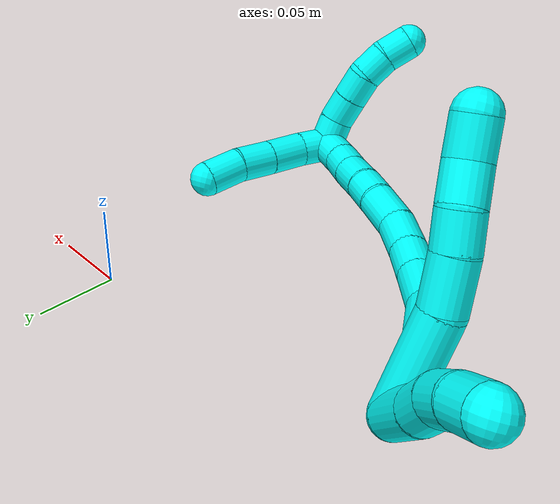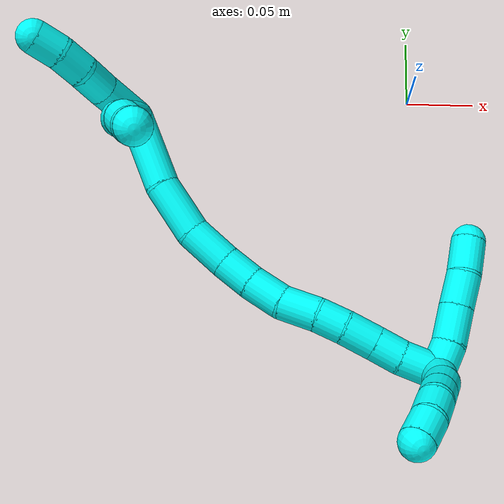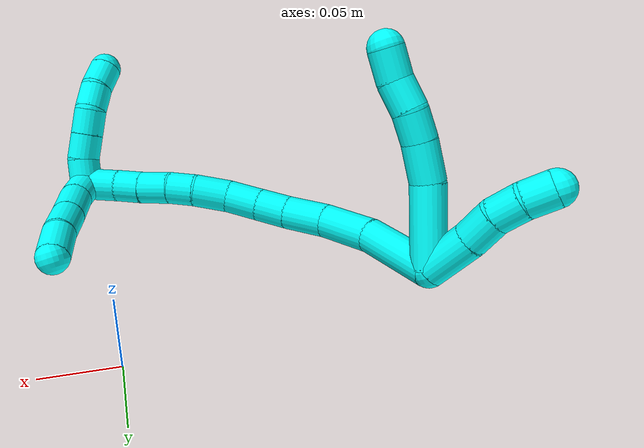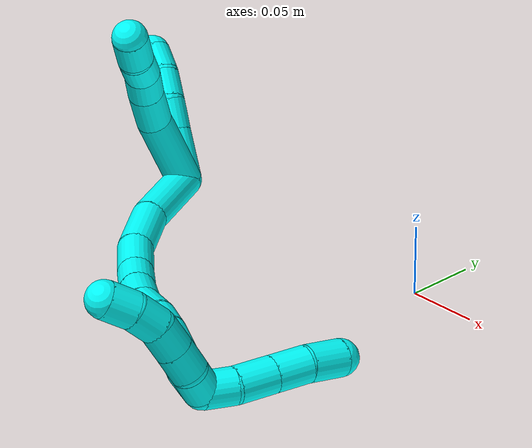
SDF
<sdf version="1.7">
 <world name="default">
  <model name="3">
   <static>0</static>
   <link name="3">
    <collision name="collision-cylinder-e_1_2_8">
     <pose>-0.007163 0.004834 0.027624 -0.173247 -0.250083 0.02183</pose>
     <geometry><cylinder><radius>0.0125</radius><length>0.057889</length></cylinder></geometry>
     <surface>
      <friction><ode><mu>1.16</mu><mu2>1.16</mu2><slip1>0</slip1><slip2>0</slip2></ode></friction>
      <contact><ode><kp>1e+06</kp><kd>1</kd><max_vel>0</max_vel><min_depth>0.001</min_depth></ode></contact>
     </surface>
    </collision>
    <visual name="visual-cylinder-e_1_2_8">
     <pose>-0.007163 0.004834 0.027624 -0.173247 -0.250083 0.02183</pose>
     <geometry><cylinder><radius>0.0125</radius><length>0.057889</length></cylinder></geometry>
     <material><ambient>0.003922 1 0.996078 1</ambient></material>
    </visual>
    <collision name="collision-cylinder-e_2_8_9">
     <pose>-0.014741 0.012214 0.069042 -0.182497 -0.029547 0.002704</pose>
     <geometry><cylinder><radius>0.0125</radius><length>0.028065</length></cylinder></geometry>
     <surface>
      <friction><ode><mu>1.16</mu><mu2>1.16</mu2><slip1>0</slip1><slip2>0</slip2></ode></friction>
      <contact><ode><kp>1e+06</kp><kd>1</kd><max_vel>0</max_vel><min_depth>0.001</min_depth></ode></contact>
     </surface>
    </collision>
    <visual name="visual-cylinder-e_2_8_9">
     <pose>-0.014741 0.012214 0.069042 -0.182497 -0.029547 0.002704</pose>
     <geometry><cylinder><radius>0.0125</radius><length>0.028065</length></cylinder></geometry>
     <material><ambient>0.003922 1 0.996078 1</ambient></material>
    </visual>
    <collision name="collision-cylinder-e_3_9_10">
     <pose>-0.014358 0.01657 0.092992 -0.1764 0.077198 -0.00683</pose>
     <geometry><cylinder><radius>0.0125</radius><length>0.020694</length></cylinder></geometry>
     <surface>
      <friction><ode><mu>1.16</mu><mu2>1.16</mu2><slip1>0</slip1><slip2>0</slip2></ode></friction>
      <contact><ode><kp>1e+06</kp><kd>1</kd><max_vel>0</max_vel><min_depth>0.001</min_depth></ode></contact>
     </surface>
    </collision>
    <visual name="visual-cylinder-e_3_9_10">
     <pose>-0.014358 0.01657 0.092992 -0.1764 0.077198 -0.00683</pose>
     <geometry><cylinder><radius>0.0125</radius><length>0.020694</length></cylinder></geometry>
     <material><ambient>0.003922 1 0.996078 1</ambient></material>
    </visual>
    <collision name="collision-cylinder-e_4_10_11">
     <pose>-0.012026 0.017905 0.113798 0.044617 0.142863 0.003193</pose>
     <geometry><cylinder><radius>0.0125</radius><length>0.021541</length></cylinder></geometry>
     <surface>
      <friction><ode><mu>1.16</mu><mu2>1.16</mu2><slip1>0</slip1><slip2>0</slip2></ode></friction>
      <contact><ode><kp>1e+06</kp><kd>1</kd><max_vel>0</max_vel><min_depth>0.001</min_depth></ode></contact>
     </surface>
    </collision>
    <visual name="visual-cylinder-e_4_10_11">
     <pose>-0.012026 0.017905 0.113798 0.044617 0.142863 0.003193</pose>
     <geometry><cylinder><radius>0.0125</radius><length>0.021541</length></cylinder></geometry>
     <material><ambient>0.003922 1 0.996078 1</ambient></material>
    </visual>
    <collision name="collision-cylinder-e_5_11_6">
     <pose>-0.010155 0.0191 0.135219 -0.153866 0.031028 -0.002392</pose>
     <geometry><cylinder><radius>0.0125</radius><length>0.021811</length></cylinder></geometry>
     <surface>
      <friction><ode><mu>1.16</mu><mu2>1.16</mu2><slip1>0</slip1><slip2>0</slip2></ode></friction>
      <contact><ode><kp>1e+06</kp><kd>1</kd><max_vel>0</max_vel><min_depth>0.001</min_depth></ode></contact>
     </surface>
    </collision>
    <visual name="visual-cylinder-e_5_11_6">
     <pose>-0.010155 0.0191 0.135219 -0.153866 0.031028 -0.002392</pose>
     <geometry><cylinder><radius>0.0125</radius><length>0.021811</length></cylinder></geometry>
     <material><ambient>0.003922 1 0.996078 1</ambient></material>
    </visual>
    <collision name="collision-cylinder-e_1_2_12">
     <pose>-0.011357 0.012144 0.006271 -1.09413 -0.693347 0.433171</pose>
     <geometry><cylinder><radius>0.0125</radius><length>0.03554</length></cylinder></geometry>
     <surface>
      <friction><ode><mu>1.16</mu><mu2>1.16</mu2><slip1>0</slip1><slip2>0</slip2></ode></friction>
      <contact><ode><kp>1e+06</kp><kd>1</kd><max_vel>0</max_vel><min_depth>0.001</min_depth></ode></contact>
     </surface>
    </collision>
    <visual name="visual-cylinder-e_1_2_12">
     <pose>-0.011357 0.012144 0.006271 -1.09413 -0.693347 0.433171</pose>
     <geometry><cylinder><radius>0.0125</radius><length>0.03554</length></cylinder></geometry>
     <material><ambient>0.003922 1 0.996078 1</ambient></material>
    </visual>
    <collision name="collision-cylinder-e_2_12_13">
     <pose>-0.029306 0.032047 0.017787 -0.976381 -0.61329 0.333188</pose>
     <geometry><cylinder><radius>0.0125</radius><length>0.022906</length></cylinder></geometry>
     <surface>
      <friction><ode><mu>1.16</mu><mu2>1.16</mu2><slip1>0</slip1><slip2>0</slip2></ode></friction>
      <contact><ode><kp>1e+06</kp><kd>1</kd><max_vel>0</max_vel><min_depth>0.001</min_depth></ode></contact>
     </surface>
    </collision>
    <visual name="visual-cylinder-e_2_12_13">
     <pose>-0.029306 0.032047 0.017787 -0.976381 -0.61329 0.333188</pose>
     <geometry><cylinder><radius>0.0125</radius><length>0.022906</length></cylinder></geometry>
     <material><ambient>0.003922 1 0.996078 1</ambient></material>
    </visual>
    <collision name="collision-cylinder-e_3_13_14">
     <pose>-0.043006 0.047159 0.025368 -1.2631 -0.744446 0.556368</pose>
     <geometry><cylinder><radius>0.0125</radius><length>0.02098</length></cylinder></geometry>
     <surface>
      <friction><ode><mu>1.16</mu><mu2>1.16</mu2><slip1>0</slip1><slip2>0</slip2></ode></friction>
      <contact><ode><kp>1e+06</kp><kd>1</kd><max_vel>0</max_vel><min_depth>0.001</min_depth></ode></contact>
     </surface>
    </collision>
    <visual name="visual-cylinder-e_3_13_14">
     <pose>-0.043006 0.047159 0.025368 -1.2631 -0.744446 0.556368</pose>
     <geometry><cylinder><radius>0.0125</radius><length>0.02098</length></cylinder></geometry>
     <material><ambient>0.003922 1 0.996078 1</ambient></material>
    </visual>
    <collision name="collision-cylinder-e_4_14_5">
     <pose>-0.058278 0.060708 0.02858 -1.43046 -0.916855 0.809961</pose>
     <geometry><cylinder><radius>0.0125</radius><length>0.020574</length></cylinder></geometry>
     <surface>
      <friction><ode><mu>1.16</mu><mu2>1.16</mu2><slip1>0</slip1><slip2>0</slip2></ode></friction>
      <contact><ode><kp>1e+06</kp><kd>1</kd><max_vel>0</max_vel><min_depth>0.001</min_depth></ode></contact>
     </surface>
    </collision>
    <visual name="visual-cylinder-e_4_14_5">
     <pose>-0.058278 0.060708 0.02858 -1.43046 -0.916855 0.809961</pose>
     <geometry><cylinder><radius>0.0125</radius><length>0.020574</length></cylinder></geometry>
     <material><ambient>0.003922 1 0.996078 1</ambient></material>
    </visual>
    <collision name="collision-cylinder-e_1_2_15">
     <pose>0.006604 -0.023583 0.01486 1.00853 0.232629 0.128781</pose>
     <geometry><cylinder><radius>0.0125</radius><length>0.057291</length></cylinder></geometry>
     <surface>
      <friction><ode><mu>1.16</mu><mu2>1.16</mu2><slip1>0</slip1><slip2>0</slip2></ode></friction>
      <contact><ode><kp>1e+06</kp><kd>1</kd><max_vel>0</max_vel><min_depth>0.001</min_depth></ode></contact>
     </surface>
    </collision>
    <visual name="visual-cylinder-e_1_2_15">
     <pose>0.006604 -0.023583 0.01486 1.00853 0.232629 0.128781</pose>
     <geometry><cylinder><radius>0.0125</radius><length>0.057291</length></cylinder></geometry>
     <material><ambient>0.003922 1 0.996078 1</ambient></material>
    </visual>
    <collision name="collision-cylinder-e_2_15_16">
     <pose>0.022086 -0.063009 0.039051 1.03849 0.449818 0.260047</pose>
     <geometry><cylinder><radius>0.0125</radius><length>0.040838</length></cylinder></geometry>
     <surface>
      <friction><ode><mu>1.16</mu><mu2>1.16</mu2><slip1>0</slip1><slip2>0</slip2></ode></friction>
      <contact><ode><kp>1e+06</kp><kd>1</kd><max_vel>0</max_vel><min_depth>0.001</min_depth></ode></contact>
     </surface>
    </collision>
    <visual name="visual-cylinder-e_2_15_16">
     <pose>0.022086 -0.063009 0.039051 1.03849 0.449818 0.260047</pose>
     <geometry><cylinder><radius>0.0125</radius><length>0.040838</length></cylinder></geometry>
     <material><ambient>0.003922 1 0.996078 1</ambient></material>
    </visual>
    <collision name="collision-cylinder-e_3_16_17">
     <pose>0.041231 -0.088934 0.05565 0.946276 0.690494 0.364147</pose>
     <geometry><cylinder><radius>0.0125</radius><length>0.032239</length></cylinder></geometry>
     <surface>
      <friction><ode><mu>1.16</mu><mu2>1.16</mu2><slip1>0</slip1><slip2>0</slip2></ode></friction>
      <contact><ode><kp>1e+06</kp><kd>1</kd><max_vel>0</max_vel><min_depth>0.001</min_depth></ode></contact>
     </surface>
    </collision>
    <visual name="visual-cylinder-e_3_16_17">
     <pose>0.041231 -0.088934 0.05565 0.946276 0.690494 0.364147</pose>
     <geometry><cylinder><radius>0.0125</radius><length>0.032239</length></cylinder></geometry>
     <material><ambient>0.003922 1 0.996078 1</ambient></material>
    </visual>
    <collision name="collision-cylinder-e_4_17_18">
     <pose>0.059542 -0.105734 0.069109 0.826095 0.72187 0.32789</pose>
     <geometry><cylinder><radius>0.0125</radius><length>0.024349</length></cylinder></geometry>
     <surface>
      <friction><ode><mu>1.16</mu><mu2>1.16</mu2><slip1>0</slip1><slip2>0</slip2></ode></friction>
      <contact><ode><kp>1e+06</kp><kd>1</kd><max_vel>0</max_vel><min_depth>0.001</min_depth></ode></contact>
     </surface>
    </collision>
    <visual name="visual-cylinder-e_4_17_18">
     <pose>0.059542 -0.105734 0.069109 0.826095 0.72187 0.32789</pose>
     <geometry><cylinder><radius>0.0125</radius><length>0.024349</length></cylinder></geometry>
     <material><ambient>0.003922 1 0.996078 1</ambient></material>
    </visual>
    <collision name="collision-cylinder-e_5_18_19">
     <pose>0.076967 -0.118582 0.082302 0.719125 0.789504 0.310695</pose>
     <geometry><cylinder><radius>0.0125</radius><length>0.026423</length></cylinder></geometry>
     <surface>
      <friction><ode><mu>1.16</mu><mu2>1.16</mu2><slip1>0</slip1><slip2>0</slip2></ode></friction>
      <contact><ode><kp>1e+06</kp><kd>1</kd><max_vel>0</max_vel><min_depth>0.001</min_depth></ode></contact>
     </surface>
    </collision>
    <visual name="visual-cylinder-e_5_18_19">
     <pose>0.076967 -0.118582 0.082302 0.719125 0.789504 0.310695</pose>
     <geometry><cylinder><radius>0.0125</radius><length>0.026423</length></cylinder></geometry>
     <material><ambient>0.003922 1 0.996078 1</ambient></material>
    </visual>
    <collision name="collision-cylinder-e_6_19_20">
     <pose>0.097767 -0.128458 0.09569 0.53059 0.995451 0.29314</pose>
     <geometry><cylinder><radius>0.0125</radius><length>0.027223</length></cylinder></geometry>
     <surface>
      <friction><ode><mu>1.16</mu><mu2>1.16</mu2><slip1>0</slip1><slip2>0</slip2></ode></friction>
      <contact><ode><kp>1e+06</kp><kd>1</kd><max_vel>0</max_vel><min_depth>0.001</min_depth></ode></contact>
     </surface>
    </collision>
    <visual name="visual-cylinder-e_6_19_20">
     <pose>0.097767 -0.128458 0.09569 0.53059 0.995451 0.29314</pose>
     <geometry><cylinder><radius>0.0125</radius><length>0.027223</length></cylinder></geometry>
     <material><ambient>0.003922 1 0.996078 1</ambient></material>
    </visual>
    <collision name="collision-cylinder-e_7_20_21">
     <pose>0.117591 -0.13633 0.106117 0.795875 0.968916 0.435453</pose>
     <geometry><cylinder><radius>0.0125</radius><length>0.02039</length></cylinder></geometry>
     <surface>
      <friction><ode><mu>1.16</mu><mu2>1.16</mu2><slip1>0</slip1><slip2>0</slip2></ode></friction>
      <contact><ode><kp>1e+06</kp><kd>1</kd><max_vel>0</max_vel><min_depth>0.001</min_depth></ode></contact>
     </surface>
    </collision>
    <visual name="visual-cylinder-e_7_20_21">
     <pose>0.117591 -0.13633 0.106117 0.795875 0.968916 0.435453</pose>
     <geometry><cylinder><radius>0.0125</radius><length>0.02039</length></cylinder></geometry>
     <material><ambient>0.003922 1 0.996078 1</ambient></material>
    </visual>
    <collision name="collision-cylinder-e_8_21_22">
     <pose>0.135663 -0.146201 0.113844 1.0001 0.955836 0.551577</pose>
     <geometry><cylinder><radius>0.0125</radius><length>0.023673</length></cylinder></geometry>
     <surface>
      <friction><ode><mu>1.16</mu><mu2>1.16</mu2><slip1>0</slip1><slip2>0</slip2></ode></friction>
      <contact><ode><kp>1e+06</kp><kd>1</kd><max_vel>0</max_vel><min_depth>0.001</min_depth></ode></contact>
     </surface>
    </collision>
    <visual name="visual-cylinder-e_8_21_22">
     <pose>0.135663 -0.146201 0.113844 1.0001 0.955836 0.551577</pose>
     <geometry><cylinder><radius>0.0125</radius><length>0.023673</length></cylinder></geometry>
     <material><ambient>0.003922 1 0.996078 1</ambient></material>
    </visual>
    <collision name="collision-cylinder-e_9_22_23">
     <pose>0.153625 -0.156896 0.121413 0.905908 0.922149 0.47447</pose>
     <geometry><cylinder><radius>0.0125</radius><length>0.020817</length></cylinder></geometry>
     <surface>
      <friction><ode><mu>1.16</mu><mu2>1.16</mu2><slip1>0</slip1><slip2>0</slip2></ode></friction>
      <contact><ode><kp>1e+06</kp><kd>1</kd><max_vel>0</max_vel><min_depth>0.001</min_depth></ode></contact>
     </surface>
    </collision>
    <visual name="visual-cylinder-e_9_22_23">
     <pose>0.153625 -0.156896 0.121413 0.905908 0.922149 0.47447</pose>
     <geometry><cylinder><radius>0.0125</radius><length>0.020817</length></cylinder></geometry>
     <material><ambient>0.003922 1 0.996078 1</ambient></material>
    </visual>
    <collision name="collision-cylinder-e_10_23_1">
     <pose>0.173396 -0.166757 0.130105 0.795717 1.03094 0.467513</pose>
     <geometry><cylinder><radius>0.0125</radius><length>0.026758</length></cylinder></geometry>
     <surface>
      <friction><ode><mu>1.16</mu><mu2>1.16</mu2><slip1>0</slip1><slip2>0</slip2></ode></friction>
      <contact><ode><kp>1e+06</kp><kd>1</kd><max_vel>0</max_vel><min_depth>0.001</min_depth></ode></contact>
     </surface>
    </collision>
    <visual name="visual-cylinder-e_10_23_1">
     <pose>0.173396 -0.166757 0.130105 0.795717 1.03094 0.467513</pose>
     <geometry><cylinder><radius>0.0125</radius><length>0.026758</length></cylinder></geometry>
     <material><ambient>0.003922 1 0.996078 1</ambient></material>
    </visual>
    <collision name="collision-cylinder-e_1_1_24">
     <pose>0.190764 -0.164055 0.130168 -2.12849 0.580967 -0.98838</pose>
     <geometry><cylinder><radius>0.0125</radius><length>0.02147</length></cylinder></geometry>
     <surface>
      <friction><ode><mu>1.16</mu><mu2>1.16</mu2><slip1>0</slip1><slip2>0</slip2></ode></friction>
      <contact><ode><kp>1e+06</kp><kd>1</kd><max_vel>0</max_vel><min_depth>0.001</min_depth></ode></contact>
     </surface>
    </collision>
    <visual name="visual-cylinder-e_1_1_24">
     <pose>0.190764 -0.164055 0.130168 -2.12849 0.580967 -0.98838</pose>
     <geometry><cylinder><radius>0.0125</radius><length>0.02147</length></cylinder></geometry>
     <material><ambient>0.003922 1 0.996078 1</ambient></material>
    </visual>
    <collision name="collision-cylinder-e_2_24_25">
     <pose>0.201795 -0.145687 0.119036 -2.10641 0.389951 -0.667729</pose>
     <geometry><cylinder><radius>0.0125</radius><length>0.027041</length></cylinder></geometry>
     <surface>
      <friction><ode><mu>1.16</mu><mu2>1.16</mu2><slip1>0</slip1><slip2>0</slip2></ode></friction>
      <contact><ode><kp>1e+06</kp><kd>1</kd><max_vel>0</max_vel><min_depth>0.001</min_depth></ode></contact>
     </surface>
    </collision>
    <visual name="visual-cylinder-e_2_24_25">
     <pose>0.201795 -0.145687 0.119036 -2.10641 0.389951 -0.667729</pose>
     <geometry><cylinder><radius>0.0125</radius><length>0.027041</length></cylinder></geometry>
     <material><ambient>0.003922 1 0.996078 1</ambient></material>
    </visual>
    <collision name="collision-cylinder-e_3_25_26">
     <pose>0.211946 -0.124914 0.106967 -2.08706 0.410313 -0.686469</pose>
     <geometry><cylinder><radius>0.0125</radius><length>0.025126</length></cylinder></geometry>
     <surface>
      <friction><ode><mu>1.16</mu><mu2>1.16</mu2><slip1>0</slip1><slip2>0</slip2></ode></friction>
      <contact><ode><kp>1e+06</kp><kd>1</kd><max_vel>0</max_vel><min_depth>0.001</min_depth></ode></contact>
     </surface>
    </collision>
    <visual name="visual-cylinder-e_3_25_26">
     <pose>0.211946 -0.124914 0.106967 -2.08706 0.410313 -0.686469</pose>
     <geometry><cylinder><radius>0.0125</radius><length>0.025126</length></cylinder></geometry>
     <material><ambient>0.003922 1 0.996078 1</ambient></material>
    </visual>
    <collision name="collision-cylinder-e_4_26_4">
     <pose>0.221593 -0.105383 0.09342 -2.26138 0.359354 -0.736258</pose>
     <geometry><cylinder><radius>0.0125</radius><length>0.026362</length></cylinder></geometry>
     <surface>
      <friction><ode><mu>1.16</mu><mu2>1.16</mu2><slip1>0</slip1><slip2>0</slip2></ode></friction>
      <contact><ode><kp>1e+06</kp><kd>1</kd><max_vel>0</max_vel><min_depth>0.001</min_depth></ode></contact>
     </surface>
    </collision>
    <visual name="visual-cylinder-e_4_26_4">
     <pose>0.221593 -0.105383 0.09342 -2.26138 0.359354 -0.736258</pose>
     <geometry><cylinder><radius>0.0125</radius><length>0.026362</length></cylinder></geometry>
     <material><ambient>0.003922 1 0.996078 1</ambient></material>
    </visual>
    <collision name="collision-cylinder-e_1_1_27">
     <pose>0.183052 -0.171062 0.144731 -0.061803 -0.18298 0.005672</pose>
     <geometry><cylinder><radius>0.0125</radius><length>0.02</length></cylinder></geometry>
     <surface>
      <friction><ode><mu>1.16</mu><mu2>1.16</mu2><slip1>0</slip1><slip2>0</slip2></ode></friction>
      <contact><ode><kp>1e+06</kp><kd>1</kd><max_vel>0</max_vel><min_depth>0.001</min_depth></ode></contact>
     </surface>
    </collision>
    <visual name="visual-cylinder-e_1_1_27">
     <pose>0.183052 -0.171062 0.144731 -0.061803 -0.18298 0.005672</pose>
     <geometry><cylinder><radius>0.0125</radius><length>0.02</length></cylinder></geometry>
     <material><ambient>0.003922 1 0.996078 1</ambient></material>
    </visual>
    <collision name="collision-cylinder-e_2_27_28">
     <pose>0.176954 -0.16891 0.163451 -0.171805 -0.442093 0.038698</pose>
     <geometry><cylinder><radius>0.0125</radius><length>0.02</length></cylinder></geometry>
     <surface>
      <friction><ode><mu>1.16</mu><mu2>1.16</mu2><slip1>0</slip1><slip2>0</slip2></ode></friction>
      <contact><ode><kp>1e+06</kp><kd>1</kd><max_vel>0</max_vel><min_depth>0.001</min_depth></ode></contact>
     </surface>
    </collision>
    <visual name="visual-cylinder-e_2_27_28">
     <pose>0.176954 -0.16891 0.163451 -0.171805 -0.442093 0.038698</pose>
     <geometry><cylinder><radius>0.0125</radius><length>0.02</length></cylinder></geometry>
     <material><ambient>0.003922 1 0.996078 1</ambient></material>
    </visual>
    <collision name="collision-cylinder-e_3_28_29">
     <pose>0.168389 -0.165997 0.181287 -0.151948 -0.4431 0.034289</pose>
     <geometry><cylinder><radius>0.0125</radius><length>0.02</length></cylinder></geometry>
     <surface>
      <friction><ode><mu>1.16</mu><mu2>1.16</mu2><slip1>0</slip1><slip2>0</slip2></ode></friction>
      <contact><ode><kp>1e+06</kp><kd>1</kd><max_vel>0</max_vel><min_depth>0.001</min_depth></ode></contact>
     </surface>
    </collision>
    <visual name="visual-cylinder-e_3_28_29">
     <pose>0.168389 -0.165997 0.181287 -0.151948 -0.4431 0.034289</pose>
     <geometry><cylinder><radius>0.0125</radius><length>0.02</length></cylinder></geometry>
     <material><ambient>0.003922 1 0.996078 1</ambient></material>
    </visual>
    <collision name="collision-cylinder-e_4_29_30">
     <pose>0.158943 -0.166229 0.198633 0.187766 -0.542006 -0.05231</pose>
     <geometry><cylinder><radius>0.0125</radius><length>0.02</length></cylinder></geometry>
     <surface>
      <friction><ode><mu>1.16</mu><mu2>1.16</mu2><slip1>0</slip1><slip2>0</slip2></ode></friction>
      <contact><ode><kp>1e+06</kp><kd>1</kd><max_vel>0</max_vel><min_depth>0.001</min_depth></ode></contact>
     </surface>
    </collision>
    <visual name="visual-cylinder-e_4_29_30">
     <pose>0.158943 -0.166229 0.198633 0.187766 -0.542006 -0.05231</pose>
     <geometry><cylinder><radius>0.0125</radius><length>0.02</length></cylinder></geometry>
     <material><ambient>0.003922 1 0.996078 1</ambient></material>
    </visual>
    <collision name="collision-cylinder-e_5_30_3">
     <pose>0.147628 -0.171058 0.214237 0.422427 -0.663211 -0.147385</pose>
     <geometry><cylinder><radius>0.0125</radius><length>0.02</length></cylinder></geometry>
     <surface>
      <friction><ode><mu>1.16</mu><mu2>1.16</mu2><slip1>0</slip1><slip2>0</slip2></ode></friction>
      <contact><ode><kp>1e+06</kp><kd>1</kd><max_vel>0</max_vel><min_depth>0.001</min_depth></ode></contact>
     </surface>
    </collision>
    <visual name="visual-cylinder-e_5_30_3">
     <pose>0.147628 -0.171058 0.214237 0.422427 -0.663211 -0.147385</pose>
     <geometry><cylinder><radius>0.0125</radius><length>0.02</length></cylinder></geometry>
     <material><ambient>0.003922 1 0.996078 1</ambient></material>
    </visual>
    <collision name="collision-sphere-3">
     <pose>0.141471 -0.174289 0.221424 0 -0 0</pose>
     <geometry><sphere><radius>0.0125</radius></sphere></geometry>
     <surface>
      <friction><ode><mu>1.16</mu><mu2>1.16</mu2><slip1>0</slip1><slip2>0</slip2></ode></friction>
      <contact><ode><kp>1e+06</kp><kd>1</kd><max_vel>0</max_vel><min_depth>0.001</min_depth></ode></contact>
     </surface>
    </collision>
    <visual name="visual-sphere-3">
     <pose>0.141471 -0.174289 0.221424 0 -0 0</pose>
     <geometry><sphere><radius>0.0125</radius></sphere></geometry>
     <material><ambient>0.003922 1 0.996078 1</ambient></material>
    </visual>
    <collision name="collision-sphere-30">
     <pose>0.153784 -0.167828 0.207049 0 -0 0</pose>
     <geometry><sphere><radius>0.0125</radius></sphere></geometry>
     <surface>
      <friction><ode><mu>1.16</mu><mu2>1.16</mu2><slip1>0</slip1><slip2>0</slip2></ode></friction>
      <contact><ode><kp>1e+06</kp><kd>1</kd><max_vel>0</max_vel><min_depth>0.001</min_depth></ode></contact>
     </surface>
    </collision>
    <visual name="visual-sphere-30">
     <pose>0.153784 -0.167828 0.207049 0 -0 0</pose>
     <geometry><sphere><radius>0.0125</radius></sphere></geometry>
     <material><ambient>0.003922 1 0.996078 1</ambient></material>
    </visual>
    <collision name="collision-sphere-29">
     <pose>0.164101 -0.164629 0.190217 0 -0 0</pose>
     <geometry><sphere><radius>0.0125</radius></sphere></geometry>
     <surface>
      <friction><ode><mu>1.16</mu><mu2>1.16</mu2><slip1>0</slip1><slip2>0</slip2></ode></friction>
      <contact><ode><kp>1e+06</kp><kd>1</kd><max_vel>0</max_vel><min_depth>0.001</min_depth></ode></contact>
     </surface>
    </collision>
    <visual name="visual-sphere-29">
     <pose>0.164101 -0.164629 0.190217 0 -0 0</pose>
     <geometry><sphere><radius>0.0125</radius></sphere></geometry>
     <material><ambient>0.003922 1 0.996078 1</ambient></material>
    </visual>
    <collision name="collision-sphere-28">
     <pose>0.172676 -0.167364 0.172356 0 -0 0</pose>
     <geometry><sphere><radius>0.0125</radius></sphere></geometry>
     <surface>
      <friction><ode><mu>1.16</mu><mu2>1.16</mu2><slip1>0</slip1><slip2>0</slip2></ode></friction>
      <contact><ode><kp>1e+06</kp><kd>1</kd><max_vel>0</max_vel><min_depth>0.001</min_depth></ode></contact>
     </surface>
    </collision>
    <visual name="visual-sphere-28">
     <pose>0.172676 -0.167364 0.172356 0 -0 0</pose>
     <geometry><sphere><radius>0.0125</radius></sphere></geometry>
     <material><ambient>0.003922 1 0.996078 1</ambient></material>
    </visual>
    <collision name="collision-sphere-27">
     <pose>0.181233 -0.170455 0.154545 0 -0 0</pose>
     <geometry><sphere><radius>0.0125</radius></sphere></geometry>
     <surface>
      <friction><ode><mu>1.16</mu><mu2>1.16</mu2><slip1>0</slip1><slip2>0</slip2></ode></friction>
      <contact><ode><kp>1e+06</kp><kd>1</kd><max_vel>0</max_vel><min_depth>0.001</min_depth></ode></contact>
     </surface>
    </collision>
    <visual name="visual-sphere-27">
     <pose>0.181233 -0.170455 0.154545 0 -0 0</pose>
     <geometry><sphere><radius>0.0125</radius></sphere></geometry>
     <material><ambient>0.003922 1 0.996078 1</ambient></material>
    </visual>
    <collision name="collision-sphere-4">
     <pose>0.226229 -0.095871 0.08556 0 -0 0</pose>
     <geometry><sphere><radius>0.0125</radius></sphere></geometry>
     <surface>
      <friction><ode><mu>1.16</mu><mu2>1.16</mu2><slip1>0</slip1><slip2>0</slip2></ode></friction>
      <contact><ode><kp>1e+06</kp><kd>1</kd><max_vel>0</max_vel><min_depth>0.001</min_depth></ode></contact>
     </surface>
    </collision>
    <visual name="visual-sphere-4">
     <pose>0.226229 -0.095871 0.08556 0 -0 0</pose>
     <geometry><sphere><radius>0.0125</radius></sphere></geometry>
     <material><ambient>0.003922 1 0.996078 1</ambient></material>
    </visual>
    <collision name="collision-sphere-26">
     <pose>0.216958 -0.114895 0.10128 0 -0 0</pose>
     <geometry><sphere><radius>0.0125</radius></sphere></geometry>
     <surface>
      <friction><ode><mu>1.16</mu><mu2>1.16</mu2><slip1>0</slip1><slip2>0</slip2></ode></friction>
      <contact><ode><kp>1e+06</kp><kd>1</kd><max_vel>0</max_vel><min_depth>0.001</min_depth></ode></contact>
     </surface>
    </collision>
    <visual name="visual-sphere-26">
     <pose>0.216958 -0.114895 0.10128 0 -0 0</pose>
     <geometry><sphere><radius>0.0125</radius></sphere></geometry>
     <material><ambient>0.003922 1 0.996078 1</ambient></material>
    </visual>
    <collision name="collision-sphere-25">
     <pose>0.206935 -0.134933 0.112654 0 -0 0</pose>
     <geometry><sphere><radius>0.0125</radius></sphere></geometry>
     <surface>
      <friction><ode><mu>1.16</mu><mu2>1.16</mu2><slip1>0</slip1><slip2>0</slip2></ode></friction>
      <contact><ode><kp>1e+06</kp><kd>1</kd><max_vel>0</max_vel><min_depth>0.001</min_depth></ode></contact>
     </surface>
    </collision>
    <visual name="visual-sphere-25">
     <pose>0.206935 -0.134933 0.112654 0 -0 0</pose>
     <geometry><sphere><radius>0.0125</radius></sphere></geometry>
     <material><ambient>0.003922 1 0.996078 1</ambient></material>
    </visual>
    <collision name="collision-sphere-24">
     <pose>0.196655 -0.156441 0.125418 0 -0 0</pose>
     <geometry><sphere><radius>0.0125</radius></sphere></geometry>
     <surface>
      <friction><ode><mu>1.16</mu><mu2>1.16</mu2><slip1>0</slip1><slip2>0</slip2></ode></friction>
      <contact><ode><kp>1e+06</kp><kd>1</kd><max_vel>0</max_vel><min_depth>0.001</min_depth></ode></contact>
     </surface>
    </collision>
    <visual name="visual-sphere-24">
     <pose>0.196655 -0.156441 0.125418 0 -0 0</pose>
     <geometry><sphere><radius>0.0125</radius></sphere></geometry>
     <material><ambient>0.003922 1 0.996078 1</ambient></material>
    </visual>
    <collision name="collision-sphere-1">
     <pose>0.184872 -0.17167 0.134917 0 -0 0</pose>
     <geometry><sphere><radius>0.0125</radius></sphere></geometry>
     <surface>
      <friction><ode><mu>1.16</mu><mu2>1.16</mu2><slip1>0</slip1><slip2>0</slip2></ode></friction>
      <contact><ode><kp>1e+06</kp><kd>1</kd><max_vel>0</max_vel><min_depth>0.001</min_depth></ode></contact>
     </surface>
    </collision>
    <visual name="visual-sphere-1">
     <pose>0.184872 -0.17167 0.134917 0 -0 0</pose>
     <geometry><sphere><radius>0.0125</radius></sphere></geometry>
     <material><ambient>0.003922 1 0.996078 1</ambient></material>
    </visual>
    <collision name="collision-sphere-23">
     <pose>0.16192 -0.161844 0.125292 0 -0 0</pose>
     <geometry><sphere><radius>0.0125</radius></sphere></geometry>
     <surface>
      <friction><ode><mu>1.16</mu><mu2>1.16</mu2><slip1>0</slip1><slip2>0</slip2></ode></friction>
      <contact><ode><kp>1e+06</kp><kd>1</kd><max_vel>0</max_vel><min_depth>0.001</min_depth></ode></contact>
     </surface>
    </collision>
    <visual name="visual-sphere-23">
     <pose>0.16192 -0.161844 0.125292 0 -0 0</pose>
     <geometry><sphere><radius>0.0125</radius></sphere></geometry>
     <material><ambient>0.003922 1 0.996078 1</ambient></material>
    </visual>
    <collision name="collision-sphere-22">
     <pose>0.145331 -0.151947 0.117533 0 -0 0</pose>
     <geometry><sphere><radius>0.0125</radius></sphere></geometry>
     <surface>
      <friction><ode><mu>1.16</mu><mu2>1.16</mu2><slip1>0</slip1><slip2>0</slip2></ode></friction>
      <contact><ode><kp>1e+06</kp><kd>1</kd><max_vel>0</max_vel><min_depth>0.001</min_depth></ode></contact>
     </surface>
    </collision>
    <visual name="visual-sphere-22">
     <pose>0.145331 -0.151947 0.117533 0 -0 0</pose>
     <geometry><sphere><radius>0.0125</radius></sphere></geometry>
     <material><ambient>0.003922 1 0.996078 1</ambient></material>
    </visual>
    <collision name="collision-sphere-21">
     <pose>0.125995 -0.140454 0.110155 0 -0 0</pose>
     <geometry><sphere><radius>0.0125</radius></sphere></geometry>
     <surface>
      <friction><ode><mu>1.16</mu><mu2>1.16</mu2><slip1>0</slip1><slip2>0</slip2></ode></friction>
      <contact><ode><kp>1e+06</kp><kd>1</kd><max_vel>0</max_vel><min_depth>0.001</min_depth></ode></contact>
     </surface>
    </collision>
    <visual name="visual-sphere-21">
     <pose>0.125995 -0.140454 0.110155 0 -0 0</pose>
     <geometry><sphere><radius>0.0125</radius></sphere></geometry>
     <material><ambient>0.003922 1 0.996078 1</ambient></material>
    </visual>
    <collision name="collision-sphere-6">
     <pose>-0.009816 0.020771 0.145991 0 -0 0</pose>
     <geometry><sphere><radius>0.0125</radius></sphere></geometry>
     <surface>
      <friction><ode><mu>1.16</mu><mu2>1.16</mu2><slip1>0</slip1><slip2>0</slip2></ode></friction>
      <contact><ode><kp>1e+06</kp><kd>1</kd><max_vel>0</max_vel><min_depth>0.001</min_depth></ode></contact>
     </surface>
    </collision>
    <visual name="visual-sphere-6">
     <pose>-0.009816 0.020771 0.145991 0 -0 0</pose>
     <geometry><sphere><radius>0.0125</radius></sphere></geometry>
     <material><ambient>0.003922 1 0.996078 1</ambient></material>
    </visual>
    <collision name="collision-sphere-11">
     <pose>-0.010493 0.01743 0.124448 0 -0 0</pose>
     <geometry><sphere><radius>0.0125</radius></sphere></geometry>
     <surface>
      <friction><ode><mu>1.16</mu><mu2>1.16</mu2><slip1>0</slip1><slip2>0</slip2></ode></friction>
      <contact><ode><kp>1e+06</kp><kd>1</kd><max_vel>0</max_vel><min_depth>0.001</min_depth></ode></contact>
     </surface>
    </collision>
    <visual name="visual-sphere-11">
     <pose>-0.010493 0.01743 0.124448 0 -0 0</pose>
     <geometry><sphere><radius>0.0125</radius></sphere></geometry>
     <material><ambient>0.003922 1 0.996078 1</ambient></material>
    </visual>
    <collision name="collision-sphere-10">
     <pose>-0.01356 0.018381 0.103148 0 -0 0</pose>
     <geometry><sphere><radius>0.0125</radius></sphere></geometry>
     <surface>
      <friction><ode><mu>1.16</mu><mu2>1.16</mu2><slip1>0</slip1><slip2>0</slip2></ode></friction>
      <contact><ode><kp>1e+06</kp><kd>1</kd><max_vel>0</max_vel><min_depth>0.001</min_depth></ode></contact>
     </surface>
    </collision>
    <visual name="visual-sphere-10">
     <pose>-0.01356 0.018381 0.103148 0 -0 0</pose>
     <geometry><sphere><radius>0.0125</radius></sphere></geometry>
     <material><ambient>0.003922 1 0.996078 1</ambient></material>
    </visual>
    <collision name="collision-sphere-9">
     <pose>-0.015156 0.01476 0.082835 0 -0 0</pose>
     <geometry><sphere><radius>0.0125</radius></sphere></geometry>
     <surface>
      <friction><ode><mu>1.16</mu><mu2>1.16</mu2><slip1>0</slip1><slip2>0</slip2></ode></friction>
      <contact><ode><kp>1e+06</kp><kd>1</kd><max_vel>0</max_vel><min_depth>0.001</min_depth></ode></contact>
     </surface>
    </collision>
    <visual name="visual-sphere-9">
     <pose>-0.015156 0.01476 0.082835 0 -0 0</pose>
     <geometry><sphere><radius>0.0125</radius></sphere></geometry>
     <material><ambient>0.003922 1 0.996078 1</ambient></material>
    </visual>
    <collision name="collision-sphere-2">
     <geometry><sphere><radius>0.0125</radius></sphere></geometry>
     <surface>
      <friction><ode><mu>1.16</mu><mu2>1.16</mu2><slip1>0</slip1><slip2>0</slip2></ode></friction>
      <contact><ode><kp>1e+06</kp><kd>1</kd><max_vel>0</max_vel><min_depth>0.001</min_depth></ode></contact>
     </surface>
    </collision>
    <visual name="visual-sphere-2">
     <geometry><sphere><radius>0.0125</radius></sphere></geometry>
     <material><ambient>0.003922 1 0.996078 1</ambient></material>
    </visual>
    <collision name="collision-sphere-19">
     <pose>0.086347 -0.12471 0.089302 0 -0 0</pose>
     <geometry><sphere><radius>0.0125</radius></sphere></geometry>
     <surface>
      <friction><ode><mu>1.16</mu><mu2>1.16</mu2><slip1>0</slip1><slip2>0</slip2></ode></friction>
      <contact><ode><kp>1e+06</kp><kd>1</kd><max_vel>0</max_vel><min_depth>0.001</min_depth></ode></contact>
     </surface>
    </collision>
    <visual name="visual-sphere-19">
     <pose>0.086347 -0.12471 0.089302 0 -0 0</pose>
     <geometry><sphere><radius>0.0125</radius></sphere></geometry>
     <material><ambient>0.003922 1 0.996078 1</ambient></material>
    </visual>
    <collision name="collision-sphere-8">
     <pose>-0.014327 0.009669 0.055249 0 -0 0</pose>
     <geometry><sphere><radius>0.0125</radius></sphere></geometry>
     <surface>
      <friction><ode><mu>1.16</mu><mu2>1.16</mu2><slip1>0</slip1><slip2>0</slip2></ode></friction>
      <contact><ode><kp>1e+06</kp><kd>1</kd><max_vel>0</max_vel><min_depth>0.001</min_depth></ode></contact>
     </surface>
    </collision>
    <visual name="visual-sphere-8">
     <pose>-0.014327 0.009669 0.055249 0 -0 0</pose>
     <geometry><sphere><radius>0.0125</radius></sphere></geometry>
     <material><ambient>0.003922 1 0.996078 1</ambient></material>
    </visual>
    <collision name="collision-sphere-12">
     <pose>-0.022714 0.024287 0.012541 0 -0 0</pose>
     <geometry><sphere><radius>0.0125</radius></sphere></geometry>
     <surface>
      <friction><ode><mu>1.16</mu><mu2>1.16</mu2><slip1>0</slip1><slip2>0</slip2></ode></friction>
      <contact><ode><kp>1e+06</kp><kd>1</kd><max_vel>0</max_vel><min_depth>0.001</min_depth></ode></contact>
     </surface>
    </collision>
    <visual name="visual-sphere-12">
     <pose>-0.022714 0.024287 0.012541 0 -0 0</pose>
     <geometry><sphere><radius>0.0125</radius></sphere></geometry>
     <material><ambient>0.003922 1 0.996078 1</ambient></material>
    </visual>
    <collision name="collision-sphere-13">
     <pose>-0.035898 0.039806 0.023032 0 -0 0</pose>
     <geometry><sphere><radius>0.0125</radius></sphere></geometry>
     <surface>
      <friction><ode><mu>1.16</mu><mu2>1.16</mu2><slip1>0</slip1><slip2>0</slip2></ode></friction>
      <contact><ode><kp>1e+06</kp><kd>1</kd><max_vel>0</max_vel><min_depth>0.001</min_depth></ode></contact>
     </surface>
    </collision>
    <visual name="visual-sphere-13">
     <pose>-0.035898 0.039806 0.023032 0 -0 0</pose>
     <geometry><sphere><radius>0.0125</radius></sphere></geometry>
     <material><ambient>0.003922 1 0.996078 1</ambient></material>
    </visual>
    <collision name="collision-sphere-14">
     <pose>-0.050113 0.054511 0.027705 0 -0 0</pose>
     <geometry><sphere><radius>0.0125</radius></sphere></geometry>
     <surface>
      <friction><ode><mu>1.16</mu><mu2>1.16</mu2><slip1>0</slip1><slip2>0</slip2></ode></friction>
      <contact><ode><kp>1e+06</kp><kd>1</kd><max_vel>0</max_vel><min_depth>0.001</min_depth></ode></contact>
     </surface>
    </collision>
    <visual name="visual-sphere-14">
     <pose>-0.050113 0.054511 0.027705 0 -0 0</pose>
     <geometry><sphere><radius>0.0125</radius></sphere></geometry>
     <material><ambient>0.003922 1 0.996078 1</ambient></material>
    </visual>
    <collision name="collision-sphere-5">
     <pose>-0.066443 0.066904 0.029456 0 -0 0</pose>
     <geometry><sphere><radius>0.0125</radius></sphere></geometry>
     <surface>
      <friction><ode><mu>1.16</mu><mu2>1.16</mu2><slip1>0</slip1><slip2>0</slip2></ode></friction>
      <contact><ode><kp>1e+06</kp><kd>1</kd><max_vel>0</max_vel><min_depth>0.001</min_depth></ode></contact>
     </surface>
    </collision>
    <visual name="visual-sphere-5">
     <pose>-0.066443 0.066904 0.029456 0 -0 0</pose>
     <geometry><sphere><radius>0.0125</radius></sphere></geometry>
     <material><ambient>0.003922 1 0.996078 1</ambient></material>
    </visual>
    <collision name="collision-sphere-15">
     <pose>0.013208 -0.047165 0.029719 0 -0 0</pose>
     <geometry><sphere><radius>0.0125</radius></sphere></geometry>
     <surface>
      <friction><ode><mu>1.16</mu><mu2>1.16</mu2><slip1>0</slip1><slip2>0</slip2></ode></friction>
      <contact><ode><kp>1e+06</kp><kd>1</kd><max_vel>0</max_vel><min_depth>0.001</min_depth></ode></contact>
     </surface>
    </collision>
    <visual name="visual-sphere-15">
     <pose>0.013208 -0.047165 0.029719 0 -0 0</pose>
     <geometry><sphere><radius>0.0125</radius></sphere></geometry>
     <material><ambient>0.003922 1 0.996078 1</ambient></material>
    </visual>
    <collision name="collision-sphere-16">
     <pose>0.030964 -0.078853 0.048384 0 -0 0</pose>
     <geometry><sphere><radius>0.0125</radius></sphere></geometry>
     <surface>
      <friction><ode><mu>1.16</mu><mu2>1.16</mu2><slip1>0</slip1><slip2>0</slip2></ode></friction>
      <contact><ode><kp>1e+06</kp><kd>1</kd><max_vel>0</max_vel><min_depth>0.001</min_depth></ode></contact>
     </surface>
    </collision>
    <visual name="visual-sphere-16">
     <pose>0.030964 -0.078853 0.048384 0 -0 0</pose>
     <geometry><sphere><radius>0.0125</radius></sphere></geometry>
     <material><ambient>0.003922 1 0.996078 1</ambient></material>
    </visual>
    <collision name="collision-sphere-17">
     <pose>0.051497 -0.099015 0.062916 0 -0 0</pose>
     <geometry><sphere><radius>0.0125</radius></sphere></geometry>
     <surface>
      <friction><ode><mu>1.16</mu><mu2>1.16</mu2><slip1>0</slip1><slip2>0</slip2></ode></friction>
      <contact><ode><kp>1e+06</kp><kd>1</kd><max_vel>0</max_vel><min_depth>0.001</min_depth></ode></contact>
     </surface>
    </collision>
    <visual name="visual-sphere-17">
     <pose>0.051497 -0.099015 0.062916 0 -0 0</pose>
     <geometry><sphere><radius>0.0125</radius></sphere></geometry>
     <material><ambient>0.003922 1 0.996078 1</ambient></material>
    </visual>
    <collision name="collision-sphere-18">
     <pose>0.067587 -0.112453 0.075302 0 -0 0</pose>
     <geometry><sphere><radius>0.0125</radius></sphere></geometry>
     <surface>
      <friction><ode><mu>1.16</mu><mu2>1.16</mu2><slip1>0</slip1><slip2>0</slip2></ode></friction>
      <contact><ode><kp>1e+06</kp><kd>1</kd><max_vel>0</max_vel><min_depth>0.001</min_depth></ode></contact>
     </surface>
    </collision>
    <visual name="visual-sphere-18">
     <pose>0.067587 -0.112453 0.075302 0 -0 0</pose>
     <geometry><sphere><radius>0.0125</radius></sphere></geometry>
     <material><ambient>0.003922 1 0.996078 1</ambient></material>
    </visual>
    <collision name="collision-sphere-20">
     <pose>0.109188 -0.132206 0.102078 0 -0 0</pose>
     <geometry><sphere><radius>0.0125</radius></sphere></geometry>
     <surface>
      <friction><ode><mu>1.16</mu><mu2>1.16</mu2><slip1>0</slip1><slip2>0</slip2></ode></friction>
      <contact><ode><kp>1e+06</kp><kd>1</kd><max_vel>0</max_vel><min_depth>0.001</min_depth></ode></contact>
     </surface>
    </collision>
    <visual name="visual-sphere-20">
     <pose>0.109188 -0.132206 0.102078 0 -0 0</pose>
     <geometry><sphere><radius>0.0125</radius></sphere></geometry>
     <material><ambient>0.003922 1 0.996078 1</ambient></material>
    </visual>
    <inertial>
     <pose>0.073118 -0.073383 0.084524 0 -0 0</pose>
     <mass>0.75</mass>
     <inertia><ixx>9.5e-05</ixx><ixy>0</ixy><ixz>0</ixz><iyy>7.4e-05</iyy><iyz>0</iyz><izz>2.7e-05</izz></inertia>
    </inertial>
   </link>
   <pose>-0.203735 -0.025148 0.021432 0.589343 0.122876 0.172348</pose>
  </model>
 </world>
</sdf>
